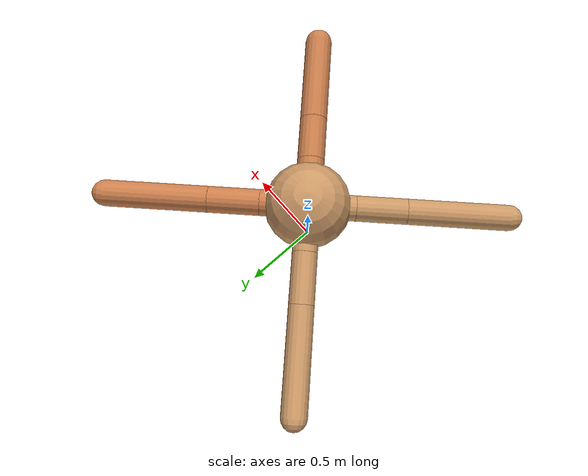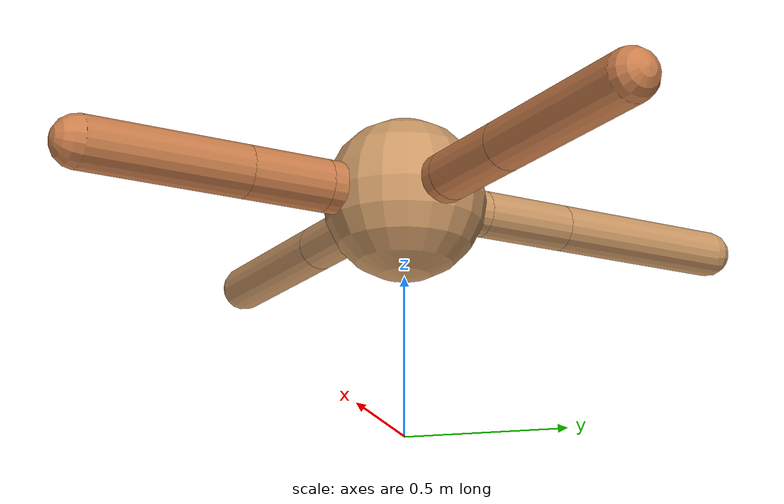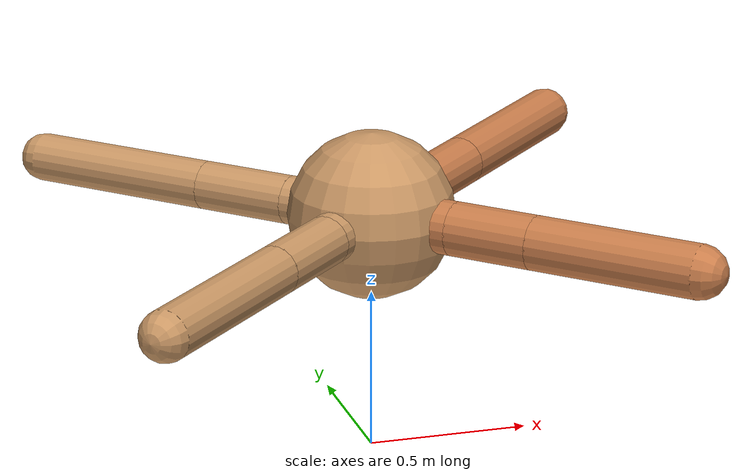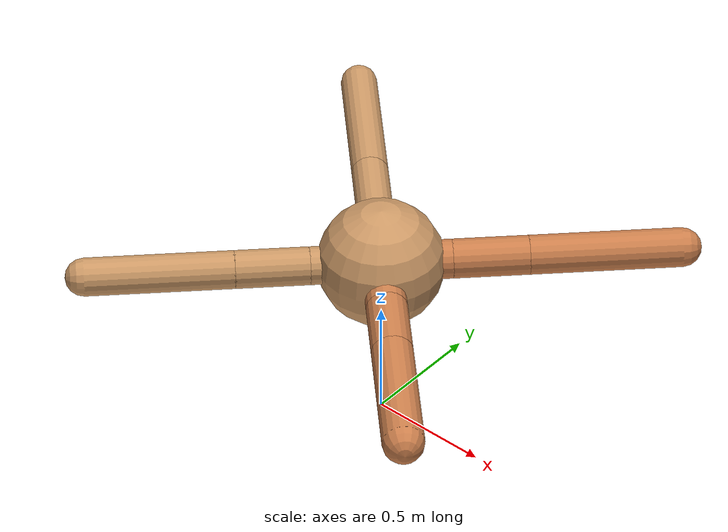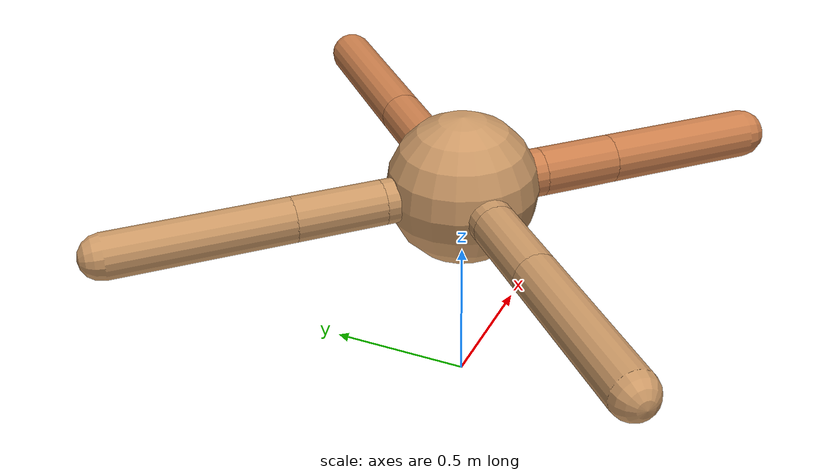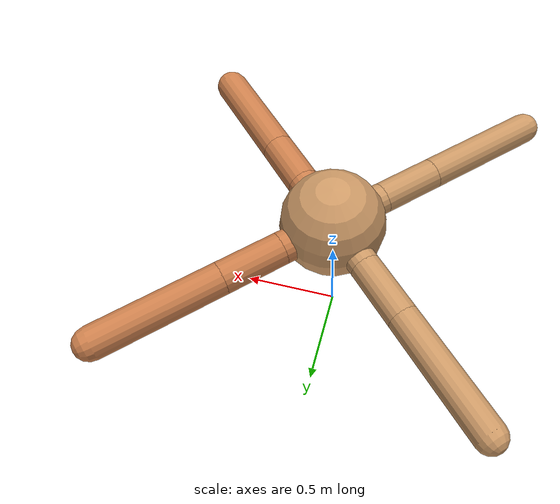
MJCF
<?xml version="1.0" ?>
<mujoco model="ant">

	<compiler angle="degree" coordinate="local" inertiafromgeom="true"/>

	<option integrator="RK4" timestep="0.01"/>

	<custom>

		<numeric data="0.0 0.0 0.55 1.0 0.0 0.0 0.0 0.0 1.0 0.0 -1.0 0.0 -1.0 0.0 1.0" name="init_qpos"/>

	</custom>

	<default>

		<joint armature="1" damping="1" limited="true"/>

		<geom conaffinity="0" condim="3" density="5.0" friction="1.5 0.1 0.1" margin="0.01" rgba="0.8 0.6 0.4 1"/>

	</default>

	<worldbody>

		<body name="torso" pos="0 0 0.75">

			<geom name="torso_geom" pos="0 0 0" size="0.2570168318532828" type="sphere"/>

			<!--joint armature="0" damping="0" limited="false" margin="0.01" name="root" pos="0 0 0" type="free"/-->

			<body name="front_left_leg" pos="0 0 0">

				<geom fromto="0 0 0 0.2 0.2 0" name="aux_1_geom" size="0.07914573878140721" type="capsule" rgba=".8 .5 .3 1"/>

				<body name="aux_1" pos="0.2 0.2 0">

					<joint axis="0 0 1" name="hip_1" pos="0.0 0.0 0.0" range="-40 40" type="hinge"/>

					<geom fromto="0 0 0 0.2165408454799169 0.2165408454799169 0" name="left_leg_geom" size="0.07914573878140721" type="capsule" rgba=".8 .5 .3 1"/>

					<body pos="0.2165408454799169 0.2165408454799169 0" name="front_left_foot">

						<joint axis="-1 1 0" name="ankle_1" pos="0.0 0.0 0.0" range="30 100" type="hinge"/>

						<geom fromto="0 0 0 0.4330816909598338 0.4330816909598338 0" name="left_ankle_geom" size="0.07914573878140721" type="capsule" rgba=".8 .5 .3 1"/>

					</body>

				</body>

			</body>

			<body name="front_right_leg" pos="0 0 0">

				<geom fromto="0 0 0 -0.2 0.2 0" name="aux_2_geom" size="0.07525439547575624" type="capsule"/>

				<body name="aux_2" pos="-0.2 0.2 0">

					<joint axis="0 0 1" name="hip_2" pos="0.0 0.0 0.0" range="-40 40" type="hinge"/>

					<geom fromto="0 0 0 -0.21209840938467028 0.21209840938467028 0" name="right_leg_geom" size="0.07525439547575624" type="capsule"/>

					<body pos="-0.21209840938467028 0.21209840938467028 0" name="front_right_foot">

						<joint axis="1 1 0" name="ankle_2" pos="0.0 0.0 0.0" range="-100 -30" type="hinge"/>

						<geom fromto="0 0 0 -0.42419681876934057 0.42419681876934057 0" name="right_ankle_geom" size="0.07525439547575624" type="capsule"/>

					</body>

				</body>

			</body>

			<body name="left_back_leg" pos="0 0 0">

				<geom fromto="0 0 0 -0.2 -0.2 0" name="aux_3_geom" size="0.07673698924947979" type="capsule"/>

				<body name="aux_3" pos="-0.2 -0.2 0">

					<joint axis="0 0 1" name="hip_3" pos="0.0 0.0 0.0" range="-40 40" type="hinge"/>

					<geom fromto="0 0 0 -0.2107672376269393 -0.2107672376269393 0" name="back_leg_geom" size="0.07673698924947979" type="capsule"/>

					<body pos="-0.2107672376269393 -0.2107672376269393 0" name="left_back_foot">

						<joint axis="-1 1 0" name="ankle_3" pos="0.0 0.0 0.0" range="-100 -30" type="hinge"/>

						<geom fromto="0 0 0 -0.4215344752538786 -0.4215344752538786 0" name="third_ankle_geom" size="0.07673698924947979" type="capsule"/>

					</body>

				</body>

			</body>

			<body name="right_back_leg" pos="0 0 0">

				<geom fromto="0 0 0 0.2 -0.2 0" name="aux_4_geom" size="0.08302121928701676" type="capsule" rgba=".8 .5 .3 1"/>

				<body name="aux_4" pos="0.2 -0.2 0">

					<joint axis="0 0 1" name="hip_4" pos="0.0 0.0 0.0" range="-40 40" type="hinge"/>

					<geom fromto="0 0 0 0.18699050874273926 -0.18699050874273926 0" name="rightback_leg_geom" size="0.08302121928701676" type="capsule" rgba=".8 .5 .3 1"/>

					<body pos="0.18699050874273926 -0.18699050874273926 0" name="right_back_foot">

						<joint axis="1 1 0" name="ankle_4" pos="0.0 0.0 0.0" range="30 100" type="hinge"/>

						<geom fromto="0 0 0 0.3739810174854785 -0.3739810174854785 0" name="fourth_ankle_geom" size="0.08302121928701676" type="capsule" rgba=".8 .5 .3 1"/>

					</body>

				</body>

			</body>

		</body>

	</worldbody>

	<actuator>

		<motor ctrllimited="true" ctrlrange="-1.0 1.0" joint="hip_4" gear="150"/>

		<motor ctrllimited="true" ctrlrange="-1.0 1.0" joint="ankle_4" gear="150"/>

		<motor ctrllimited="true" ctrlrange="-1.0 1.0" joint="hip_1" gear="150"/>

		<motor ctrllimited="true" ctrlrange="-1.0 1.0" joint="ankle_1" gear="150"/>

		<motor ctrllimited="true" ctrlrange="-1.0 1.0" joint="hip_2" gear="150"/>

		<motor ctrllimited="true" ctrlrange="-1.0 1.0" joint="ankle_2" gear="150"/>

		<motor ctrllimited="true" ctrlrange="-1.0 1.0" joint="hip_3" gear="150"/>

		<motor ctrllimited="true" ctrlrange="-1.0 1.0" joint="ankle_3" gear="150"/>

	</actuator>

</mujoco>
